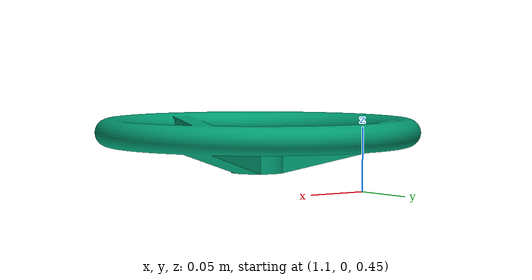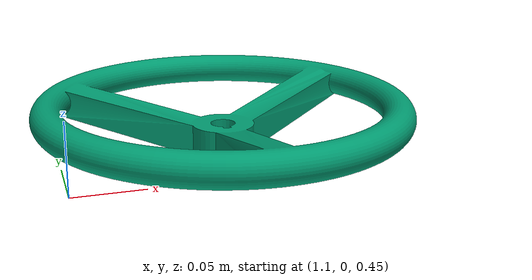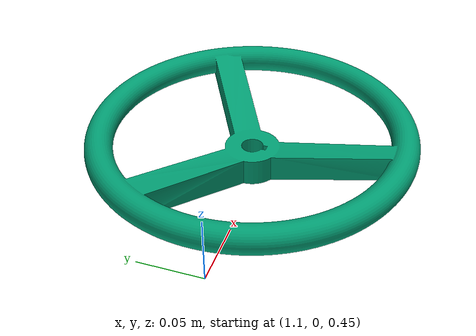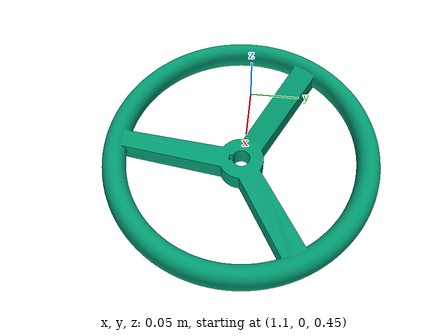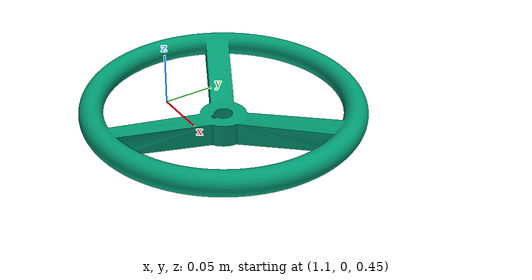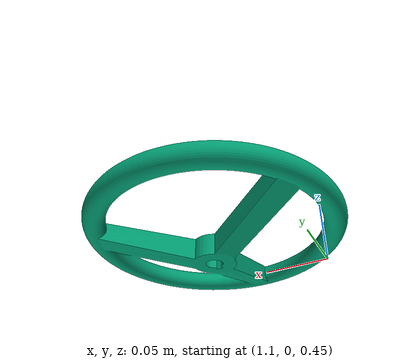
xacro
<?xml version="1.0" encoding="utf-8"?>
<robot name="valve_model" xmlns:xacro="http://www.ros.org/wiki/xacro">
    <xacro:arg name="sim"    default="false"/>
    <xacro:arg name="x"      default="1.2"/>
    <xacro:arg name="y"      default="0.0"/>
    <xacro:arg name="z"      default="0.5"/>
    <xacro:arg name="roll"   default="0.0"/>
    <xacro:arg name="pitch"  default="0.0"/>
    <xacro:arg name="yaw"    default="0.0"/>

    <xacro:if value="$(arg sim)">
        <!-- In sim, any static object needs to be anchored at world. Luckily, world and map align in sim -->
        <xacro:property name="root_frame" value="world"/>
    </xacro:if>
    <xacro:unless value="$(arg sim)">
        <xacro:property name="root_frame" value="map"/>
    </xacro:unless>

    <link name="${root_frame}">
    </link>

    <joint name="valve_base_joint" type="fixed">
      <origin xyz="$(arg x) $(arg y) $(arg z)" rpy="0 $(arg pitch) $(arg yaw)"/>
      <parent link="${root_frame}"/>
      <child link="valve_gt"/>
    </joint>

    <link name="valve_gt">
    <inertial>
      <mass value="0.01" />
      <origin xyz="0 0 0.0"  rpy="0 0 0"/>
      <inertia
        ixx = "0.000001" ixy = "0.0" ixz = "0.0"
        iyy = "0.000001" iyz = "0.0"
        izz = "0.000001" />
      </inertial>
    </link>

    <link name="wheel">
    <inertial>
      <origin xyz="0 0 0" rpy="0 0 0"/>
      <mass value="1.0" />
      <!-- Inertia of a torus radius = 0.12 and cross section radius 0.02-->
      <inertia
        ixx = "0.00745" ixy = "0.0" ixz = "0.0"
        iyy = "0.0147" iyz = "0.0"
        izz = "0.00745" />
    </inertial>

    <collision>
      <origin xyz="0 0 0" rpy="3.14 0 0"/>
        <geometry>
          <mesh filename="package://piloting_demo/models/valve/meshes/valve.dae" scale="1.0 1.0 1.0"/>
        </geometry>
      <surface>
        <friction>
          <ode>
            <mu>1</mu>
            <mu2>1</mu2>
            <slip1>0</slip1>
            <slip2>0</slip2>
          </ode>
        </friction>
      </surface>
    </collision>
    <visual>
      <origin xyz="0 0 0" rpy="3.14 0 0"/>
        <geometry>
          <mesh filename="package://piloting_demo/models/valve/meshes/valve.stl" scale="1.0 1.0 1.0"/>
        </geometry>
    </visual>
  </link>

  <link name="grasp_point" />

  <joint name="wheel_joint" type="revolute">
    <origin xyz="0 0 0" rpy="0.0 0 0"/>
    <axis xyz="0 0 1" rpy="0 0 0"/>
    <parent link="valve_gt"/>
    <child link="wheel"/>
    <dynamics damping="10.0" friction="10.0"/>
    <limit effort="30" velocity="1.0" lower="-3.14" upper="3.14"/>
  </joint>

  <joint name="grasp_point_joint" type="fixed">
    <origin xyz="0 0.1 0" rpy="0 0 -1.57"/>
    <axis xyz="0 0 1" rpy="0 0 0"/>
    <parent link="wheel"/>
    <child link="grasp_point"/>
  </joint>

  <!-- Gazebo simulation -->
  <transmission name="wheel_joint_transmission">
    <type>transmission_interface/SimpleTransmission</type>
    <joint name="wheel_joint">
      <hardwareInterface>hardware_interface/EffortJointInterface</hardwareInterface>
    </joint>
    <actuator name="wheel_joint_motor">
      <mechanicalReduction>1</mechanicalReduction>
    </actuator>
  </transmission>

  <gazebo>
    <plugin name="gazebo_ros_control" filename="libgazebo_ros_control.so">
      <legacyModeNS>true</legacyModeNS>
      <robotParam>valve_description</robotParam>
      <robotNamespace>valve</robotNamespace>
    </plugin>
  </gazebo>
</robot>
